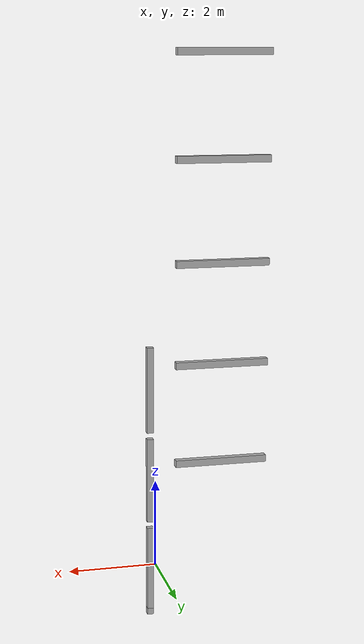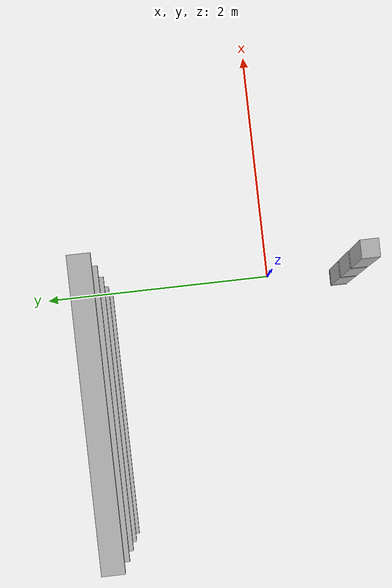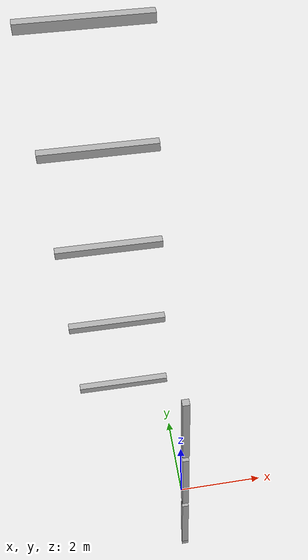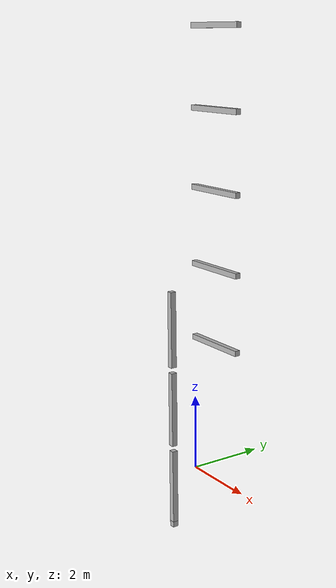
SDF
<sdf version="1.7">
 <world name="default">
  <model name="orthogonal_747_2.000.15_TS">
   <static>1</static>
   <link name="u_link_0_2_3">
    <inertial>
     <mass>1</mass>
     <inertia>
      <ixx>0.166667</ixx>
      <ixy>0</ixy>
      <ixz>0</ixz>
      <iyy>0.166667</iyy>
      <iyz>0</iyz>
      <izz>0.166667</izz>
     </inertia>
    </inertial>
    <pose>6.45 4.3 1.075 0 -0 0</pose>
    <visual name="visual_0">
     <laser_retro>400</laser_retro>
     <geometry><box><size>0.15 1e-06 0.15</size></box></geometry>
     <material>
      <script><name>Gazebo/Grey</name><uri>file://media/materials/scripts/gazebo.material</uri></script>
      <shader type="pixel"><normal_map>__default__</normal_map></shader>
      <ambient>0.678 0.498 0.659 1</ambient>
      <diffuse>0.7 0.7 0.7 1</diffuse>
      <specular>0.01 0.01 0.01 1</specular>
      <emissive>0 0 0 1</emissive>
     </material>
     <pose>0 -0.075 0 0 -0 0</pose>
     <transparency>1</transparency>
    </visual>
    <visual name="visual_1">
     <laser_retro>401</laser_retro>
     <geometry><box><size>0.15 1e-06 0.15</size></box></geometry>
     <material>
      <script><name>Gazebo/Grey</name><uri>file://media/materials/scripts/gazebo.material</uri></script>
      <shader type="pixel"><normal_map>__default__</normal_map></shader>
      <ambient>0.447 0.624 0.812 1</ambient>
      <diffuse>0.7 0.7 0.7 1</diffuse>
      <specular>0.01 0.01 0.01 1</specular>
      <emissive>0 0 0 1</emissive>
     </material>
     <pose>0 0.075 0 0 -0 0</pose>
     <transparency>1</transparency>
    </visual>
    <visual name="visual_2">
     <laser_retro>402</laser_retro>
     <geometry><box><size>0.15 0.15 1e-06</size></box></geometry>
     <material>
      <script><name>Gazebo/Grey</name><uri>file://media/materials/scripts/gazebo.material</uri></script>
      <shader type="pixel"><normal_map>__default__</normal_map></shader>
      <ambient>0.988 0.686 0.243 1</ambient>
      <diffuse>0.7 0.7 0.7 1</diffuse>
      <specular>0.01 0.01 0.01 1</specular>
      <emissive>0 0 0 1</emissive>
     </material>
     <pose>0 0 -0.075 0 -0 0</pose>
     <transparency>1</transparency>
    </visual>
    <visual name="visual_3">
     <laser_retro>403</laser_retro>
     <geometry><box><size>1e-06 0.15 0.15</size></box></geometry>
     <material>
      <script><name>Gazebo/Grey</name><uri>file://media/materials/scripts/gazebo.material</uri></script>
      <shader type="pixel"><normal_map>__default__</normal_map></shader>
      <ambient>0.988 0.914 0.31 1</ambient>
      <diffuse>0.7 0.7 0.7 1</diffuse>
      <specular>0.01 0.01 0.01 1</specular>
      <emissive>0 0 0 1</emissive>
     </material>
     <pose>0.075 0 0 0 -0 0</pose>
     <transparency>1</transparency>
    </visual>
    <visual name="visual_4">
     <laser_retro>404</laser_retro>
     <geometry><box><size>0.15 0.15 1e-06</size></box></geometry>
     <material>
      <script><name>Gazebo/Grey</name><uri>file://media/materials/scripts/gazebo.material</uri></script>
      <shader type="pixel"><normal_map>__default__</normal_map></shader>
      <ambient>0.937 0.161 0.161 1</ambient>
      <diffuse>0.7 0.7 0.7 1</diffuse>
      <specular>0.01 0.01 0.01 1</specular>
      <emissive>0 0 0 1</emissive>
     </material>
     <pose>0 0 0.075 0 -0 0</pose>
     <transparency>1</transparency>
    </visual>
    <visual name="visual_5">
     <laser_retro>405</laser_retro>
     <geometry><box><size>1e-06 0.15 0.15</size></box></geometry>
     <material>
      <script><name>Gazebo/Grey</name><uri>file://media/materials/scripts/gazebo.material</uri></script>
      <shader type="pixel"><normal_map>__default__</normal_map></shader>
      <ambient>0.541 0.886 0.204 1</ambient>
      <diffuse>0.7 0.7 0.7 1</diffuse>
      <specular>0.01 0.01 0.01 1</specular>
      <emissive>0 0 0 1</emissive>
     </material>
     <pose>-0.075 0 0 0 -0 0</pose>
     <transparency>1</transparency>
    </visual>
    <visual name="visual_texture">
     <geometry><box><size>0.149985 0.149985 0.149985</size></box></geometry>
     <material>
      <script>
       <uri>model://BASE_MODELS/simple_block_v2_textured/materials/scripts</uri>
       <uri>model://BASE_MODELS/simple_block_v2_textured/materials/textures</uri>
       <name>metal</name>
      </script>
     </material>
     <laser_retro>406</laser_retro>
    </visual>
    <collision name="collision">
     <geometry><box><size>0.15 0.15 0.15</size></box></geometry>
     <surface>
      <friction>
       <ode><mu>1</mu><mu2>1</mu2><fdir1>0 0 0</fdir1><slip1>0</slip1><slip2>0</slip2></ode>
       <torsional>
        <coefficient>1</coefficient>
        <patch_radius>0</patch_radius>
        <surface_radius>0</surface_radius>
        <use_patch_radius>1</use_patch_radius>
        <ode><slip>0</slip></ode>
       </torsional>
      </friction>
      <bounce><restitution_coefficient>0</restitution_coefficient><threshold>1e+06</threshold></bounce>
      <contact>
       <collide_without_contact>0</collide_without_contact>
       <collide_without_contact_bitmask>1</collide_without_contact_bitmask>
       <collide_bitmask>1</collide_bitmask>
       <ode>
        <soft_cfm>0</soft_cfm>
        <soft_erp>0.2</soft_erp>
        <kp>1e+13</kp>
        <kd>1</kd>
        <max_vel>0.01</max_vel>
        <min_depth>0</min_depth>
       </ode>
       <bullet>
        <split_impulse>1</split_impulse>
        <split_impulse_penetration_threshold>-0.01</split_impulse_penetration_threshold>
        <soft_cfm>0</soft_cfm>
        <soft_erp>0.2</soft_erp>
        <kp>1e+13</kp>
        <kd>1</kd>
       </bullet>
      </contact>
     </surface>
    </collision>
   </link>
   <link name="z_link_1_2_3">
    <inertial>
     <mass>1</mass>
     <inertia>
      <ixx>0.166667</ixx>
      <ixy>0</ixy>
      <ixz>0</ixz>
      <iyy>0.166667</iyy>
      <iyz>0</iyz>
      <izz>0.166667</izz>
     </inertia>
    </inertial>
    <pose>6.45 4.3 2.15 0 -0 0</pose>
    <visual name="visual_0">
     <laser_retro>1226</laser_retro>
     <geometry><box><size>0.15 1e-06 2</size></box></geometry>
     <material>
      <script><name>Gazebo/Grey</name><uri>file://media/materials/scripts/gazebo.material</uri></script>
      <shader type="pixel"><normal_map>__default__</normal_map></shader>
      <ambient>0.678 0.498 0.659 1</ambient>
      <diffuse>0.7 0.7 0.7 1</diffuse>
      <specular>0.01 0.01 0.01 1</specular>
      <emissive>0 0 0 1</emissive>
     </material>
     <pose>0 -0.075 0 0 -0 0</pose>
     <transparency>1</transparency>
    </visual>
    <visual name="visual_1">
     <laser_retro>1227</laser_retro>
     <geometry><box><size>0.15 1e-06 2</size></box></geometry>
     <material>
      <script><name>Gazebo/Grey</name><uri>file://media/materials/scripts/gazebo.material</uri></script>
      <shader type="pixel"><normal_map>__default__</normal_map></shader>
      <ambient>0.447 0.624 0.812 1</ambient>
      <diffuse>0.7 0.7 0.7 1</diffuse>
      <specular>0.01 0.01 0.01 1</specular>
      <emissive>0 0 0 1</emissive>
     </material>
     <pose>0 0.075 0 0 -0 0</pose>
     <transparency>1</transparency>
    </visual>
    <visual name="visual_2">
     <laser_retro>1228</laser_retro>
     <geometry><box><size>0.15 0.15 1e-06</size></box></geometry>
     <material>
      <script><name>Gazebo/Grey</name><uri>file://media/materials/scripts/gazebo.material</uri></script>
      <shader type="pixel"><normal_map>__default__</normal_map></shader>
      <ambient>0.988 0.686 0.243 1</ambient>
      <diffuse>0.7 0.7 0.7 1</diffuse>
      <specular>0.01 0.01 0.01 1</specular>
      <emissive>0 0 0 1</emissive>
     </material>
     <pose>0 0 -1 0 -0 0</pose>
     <transparency>1</transparency>
    </visual>
    <visual name="visual_3">
     <laser_retro>1229</laser_retro>
     <geometry><box><size>1e-06 0.15 2</size></box></geometry>
     <material>
      <script><name>Gazebo/Grey</name><uri>file://media/materials/scripts/gazebo.material</uri></script>
      <shader type="pixel"><normal_map>__default__</normal_map></shader>
      <ambient>0.988 0.914 0.31 1</ambient>
      <diffuse>0.7 0.7 0.7 1</diffuse>
      <specular>0.01 0.01 0.01 1</specular>
      <emissive>0 0 0 1</emissive>
     </material>
     <pose>0.075 0 0 0 -0 0</pose>
     <transparency>1</transparency>
    </visual>
    <visual name="visual_4">
     <laser_retro>1230</laser_retro>
     <geometry><box><size>0.15 0.15 1e-06</size></box></geometry>
     <material>
      <script><name>Gazebo/Grey</name><uri>file://media/materials/scripts/gazebo.material</uri></script>
      <shader type="pixel"><normal_map>__default__</normal_map></shader>
      <ambient>0.937 0.161 0.161 1</ambient>
      <diffuse>0.7 0.7 0.7 1</diffuse>
      <specular>0.01 0.01 0.01 1</specular>
      <emissive>0 0 0 1</emissive>
     </material>
     <pose>0 0 1 0 -0 0</pose>
     <transparency>1</transparency>
    </visual>
    <visual name="visual_5">
     <laser_retro>1231</laser_retro>
     <geometry><box><size>1e-06 0.15 2</size></box></geometry>
     <material>
      <script><name>Gazebo/Grey</name><uri>file://media/materials/scripts/gazebo.material</uri></script>
      <shader type="pixel"><normal_map>__default__</normal_map></shader>
      <ambient>0.541 0.886 0.204 1</ambient>
      <diffuse>0.7 0.7 0.7 1</diffuse>
      <specular>0.01 0.01 0.01 1</specular>
      <emissive>0 0 0 1</emissive>
     </material>
     <pose>-0.075 0 0 0 -0 0</pose>
     <transparency>1</transparency>
    </visual>
    <visual name="visual_texture">
     <geometry><box><size>0.149985 0.149985 1.9998</size></box></geometry>
     <material>
      <script>
       <uri>model://BASE_MODELS/simple_block_v2_textured/materials/scripts</uri>
       <uri>model://BASE_MODELS/simple_block_v2_textured/materials/textures</uri>
       <name>metal</name>
      </script>
     </material>
     <laser_retro>1232</laser_retro>
    </visual>
    <collision name="collision">
     <geometry><box><size>0.15 0.15 2</size></box></geometry>
     <surface>
      <friction>
       <ode><mu>1</mu><mu2>1</mu2><fdir1>0 0 0</fdir1><slip1>0</slip1><slip2>0</slip2></ode>
       <torsional>
        <coefficient>1</coefficient>
        <patch_radius>0</patch_radius>
        <surface_radius>0</surface_radius>
        <use_patch_radius>1</use_patch_radius>
        <ode><slip>0</slip></ode>
       </torsional>
      </friction>
      <bounce><restitution_coefficient>0</restitution_coefficient><threshold>1e+06</threshold></bounce>
      <contact>
       <collide_without_contact>0</collide_without_contact>
       <collide_without_contact_bitmask>1</collide_without_contact_bitmask>
       <collide_bitmask>1</collide_bitmask>
       <ode>
        <soft_cfm>0</soft_cfm>
        <soft_erp>0.2</soft_erp>
        <kp>1e+13</kp>
        <kd>1</kd>
        <max_vel>0.01</max_vel>
        <min_depth>0</min_depth>
       </ode>
       <bullet>
        <split_impulse>1</split_impulse>
        <split_impulse_penetration_threshold>-0.01</split_impulse_penetration_threshold>
        <soft_cfm>0</soft_cfm>
        <soft_erp>0.2</soft_erp>
        <kp>1e+13</kp>
        <kd>1</kd>
       </bullet>
      </contact>
     </surface>
    </collision>
   </link>
   <link name="z_link_2_2_3">
    <inertial>
     <mass>1</mass>
     <inertia>
      <ixx>0.166667</ixx>
      <ixy>0</ixy>
      <ixz>0</ixz>
      <iyy>0.166667</iyy>
      <iyz>0</iyz>
      <izz>0.166667</izz>
     </inertia>
    </inertial>
    <pose>6.45 4.3 4.3 0 -0 0</pose>
    <visual name="visual_0">
     <laser_retro>2129</laser_retro>
     <geometry><box><size>0.15 1e-06 2</size></box></geometry>
     <material>
      <script><name>Gazebo/Grey</name><uri>file://media/materials/scripts/gazebo.material</uri></script>
      <shader type="pixel"><normal_map>__default__</normal_map></shader>
      <ambient>0.678 0.498 0.659 1</ambient>
      <diffuse>0.7 0.7 0.7 1</diffuse>
      <specular>0.01 0.01 0.01 1</specular>
      <emissive>0 0 0 1</emissive>
     </material>
     <pose>0 -0.075 0 0 -0 0</pose>
     <transparency>1</transparency>
    </visual>
    <visual name="visual_1">
     <laser_retro>2130</laser_retro>
     <geometry><box><size>0.15 1e-06 2</size></box></geometry>
     <material>
      <script><name>Gazebo/Grey</name><uri>file://media/materials/scripts/gazebo.material</uri></script>
      <shader type="pixel"><normal_map>__default__</normal_map></shader>
      <ambient>0.447 0.624 0.812 1</ambient>
      <diffuse>0.7 0.7 0.7 1</diffuse>
      <specular>0.01 0.01 0.01 1</specular>
      <emissive>0 0 0 1</emissive>
     </material>
     <pose>0 0.075 0 0 -0 0</pose>
     <transparency>1</transparency>
    </visual>
    <visual name="visual_2">
     <laser_retro>2131</laser_retro>
     <geometry><box><size>0.15 0.15 1e-06</size></box></geometry>
     <material>
      <script><name>Gazebo/Grey</name><uri>file://media/materials/scripts/gazebo.material</uri></script>
      <shader type="pixel"><normal_map>__default__</normal_map></shader>
      <ambient>0.988 0.686 0.243 1</ambient>
      <diffuse>0.7 0.7 0.7 1</diffuse>
      <specular>0.01 0.01 0.01 1</specular>
      <emissive>0 0 0 1</emissive>
     </material>
     <pose>0 0 -1 0 -0 0</pose>
     <transparency>1</transparency>
    </visual>
    <visual name="visual_3">
     <laser_retro>2132</laser_retro>
     <geometry><box><size>1e-06 0.15 2</size></box></geometry>
     <material>
      <script><name>Gazebo/Grey</name><uri>file://media/materials/scripts/gazebo.material</uri></script>
      <shader type="pixel"><normal_map>__default__</normal_map></shader>
      <ambient>0.988 0.914 0.31 1</ambient>
      <diffuse>0.7 0.7 0.7 1</diffuse>
      <specular>0.01 0.01 0.01 1</specular>
      <emissive>0 0 0 1</emissive>
     </material>
     <pose>0.075 0 0 0 -0 0</pose>
     <transparency>1</transparency>
    </visual>
    <visual name="visual_4">
     <laser_retro>2133</laser_retro>
     <geometry><box><size>0.15 0.15 1e-06</size></box></geometry>
     <material>
      <script><name>Gazebo/Grey</name><uri>file://media/materials/scripts/gazebo.material</uri></script>
      <shader type="pixel"><normal_map>__default__</normal_map></shader>
      <ambient>0.937 0.161 0.161 1</ambient>
      <diffuse>0.7 0.7 0.7 1</diffuse>
      <specular>0.01 0.01 0.01 1</specular>
      <emissive>0 0 0 1</emissive>
     </material>
     <pose>0 0 1 0 -0 0</pose>
     <transparency>1</transparency>
    </visual>
    <visual name="visual_5">
     <laser_retro>2134</laser_retro>
     <geometry><box><size>1e-06 0.15 2</size></box></geometry>
     <material>
      <script><name>Gazebo/Grey</name><uri>file://media/materials/scripts/gazebo.material</uri></script>
      <shader type="pixel"><normal_map>__default__</normal_map></shader>
      <ambient>0.541 0.886 0.204 1</ambient>
      <diffuse>0.7 0.7 0.7 1</diffuse>
      <specular>0.01 0.01 0.01 1</specular>
      <emissive>0 0 0 1</emissive>
     </material>
     <pose>-0.075 0 0 0 -0 0</pose>
     <transparency>1</transparency>
    </visual>
    <visual name="visual_texture">
     <geometry><box><size>0.149985 0.149985 1.9998</size></box></geometry>
     <material>
      <script>
       <uri>model://BASE_MODELS/simple_block_v2_textured/materials/scripts</uri>
       <uri>model://BASE_MODELS/simple_block_v2_textured/materials/textures</uri>
       <name>metal</name>
      </script>
     </material>
     <laser_retro>2135</laser_retro>
    </visual>
    <collision name="collision">
     <geometry><box><size>0.15 0.15 2</size></box></geometry>
     <surface>
      <friction>
       <ode><mu>1</mu><mu2>1</mu2><fdir1>0 0 0</fdir1><slip1>0</slip1><slip2>0</slip2></ode>
       <torsional>
        <coefficient>1</coefficient>
        <patch_radius>0</patch_radius>
        <surface_radius>0</surface_radius>
        <use_patch_radius>1</use_patch_radius>
        <ode><slip>0</slip></ode>
       </torsional>
      </friction>
      <bounce><restitution_coefficient>0</restitution_coefficient><threshold>1e+06</threshold></bounce>
      <contact>
       <collide_without_contact>0</collide_without_contact>
       <collide_without_contact_bitmask>1</collide_without_contact_bitmask>
       <collide_bitmask>1</collide_bitmask>
       <ode>
        <soft_cfm>0</soft_cfm>
        <soft_erp>0.2</soft_erp>
        <kp>1e+13</kp>
        <kd>1</kd>
        <max_vel>0.01</max_vel>
        <min_depth>0</min_depth>
       </ode>
       <bullet>
        <split_impulse>1</split_impulse>
        <split_impulse_penetration_threshold>-0.01</split_impulse_penetration_threshold>
        <soft_cfm>0</soft_cfm>
        <soft_erp>0.2</soft_erp>
        <kp>1e+13</kp>
        <kd>1</kd>
       </bullet>
      </contact>
     </surface>
    </collision>
   </link>
   <link name="x_link_2_3_2">
    <inertial>
     <mass>1</mass>
     <inertia>
      <ixx>0.166667</ixx>
      <ixy>0</ixy>
      <ixz>0</ixz>
      <iyy>0.166667</iyy>
      <iyz>0</iyz>
      <izz>0.166667</izz>
     </inertia>
    </inertial>
    <pose>5.375 6.45 5.375 0 -0 0</pose>
    <visual name="visual_0">
     <laser_retro>2269</laser_retro>
     <geometry><box><size>2 1e-06 0.15</size></box></geometry>
     <material>
      <script><name>Gazebo/Grey</name><uri>file://media/materials/scripts/gazebo.material</uri></script>
      <shader type="pixel"><normal_map>__default__</normal_map></shader>
      <ambient>0.678 0.498 0.659 1</ambient>
      <diffuse>0.7 0.7 0.7 1</diffuse>
      <specular>0.01 0.01 0.01 1</specular>
      <emissive>0 0 0 1</emissive>
     </material>
     <pose>0 -0.075 0 0 -0 0</pose>
     <transparency>1</transparency>
    </visual>
    <visual name="visual_1">
     <laser_retro>2270</laser_retro>
     <geometry><box><size>2 1e-06 0.15</size></box></geometry>
     <material>
      <script><name>Gazebo/Grey</name><uri>file://media/materials/scripts/gazebo.material</uri></script>
      <shader type="pixel"><normal_map>__default__</normal_map></shader>
      <ambient>0.447 0.624 0.812 1</ambient>
      <diffuse>0.7 0.7 0.7 1</diffuse>
      <specular>0.01 0.01 0.01 1</specular>
      <emissive>0 0 0 1</emissive>
     </material>
     <pose>0 0.075 0 0 -0 0</pose>
     <transparency>1</transparency>
    </visual>
    <visual name="visual_2">
     <laser_retro>2271</laser_retro>
     <geometry><box><size>2 0.15 1e-06</size></box></geometry>
     <material>
      <script><name>Gazebo/Grey</name><uri>file://media/materials/scripts/gazebo.material</uri></script>
      <shader type="pixel"><normal_map>__default__</normal_map></shader>
      <ambient>0.988 0.686 0.243 1</ambient>
      <diffuse>0.7 0.7 0.7 1</diffuse>
      <specular>0.01 0.01 0.01 1</specular>
      <emissive>0 0 0 1</emissive>
     </material>
     <pose>0 0 -0.075 0 -0 0</pose>
     <transparency>1</transparency>
    </visual>
    <visual name="visual_3">
     <laser_retro>2272</laser_retro>
     <geometry><box><size>1e-06 0.15 0.15</size></box></geometry>
     <material>
      <script><name>Gazebo/Grey</name><uri>file://media/materials/scripts/gazebo.material</uri></script>
      <shader type="pixel"><normal_map>__default__</normal_map></shader>
      <ambient>0.988 0.914 0.31 1</ambient>
      <diffuse>0.7 0.7 0.7 1</diffuse>
      <specular>0.01 0.01 0.01 1</specular>
      <emissive>0 0 0 1</emissive>
     </material>
     <pose>1 0 0 0 -0 0</pose>
     <transparency>1</transparency>
    </visual>
    <visual name="visual_4">
     <laser_retro>2273</laser_retro>
     <geometry><box><size>2 0.15 1e-06</size></box></geometry>
     <material>
      <script><name>Gazebo/Grey</name><uri>file://media/materials/scripts/gazebo.material</uri></script>
      <shader type="pixel"><normal_map>__default__</normal_map></shader>
      <ambient>0.937 0.161 0.161 1</ambient>
      <diffuse>0.7 0.7 0.7 1</diffuse>
      <specular>0.01 0.01 0.01 1</specular>
      <emissive>0 0 0 1</emissive>
     </material>
     <pose>0 0 0.075 0 -0 0</pose>
     <transparency>1</transparency>
    </visual>
    <visual name="visual_5">
     <laser_retro>2274</laser_retro>
     <geometry><box><size>1e-06 0.15 0.15</size></box></geometry>
     <material>
      <script><name>Gazebo/Grey</name><uri>file://media/materials/scripts/gazebo.material</uri></script>
      <shader type="pixel"><normal_map>__default__</normal_map></shader>
      <ambient>0.541 0.886 0.204 1</ambient>
      <diffuse>0.7 0.7 0.7 1</diffuse>
      <specular>0.01 0.01 0.01 1</specular>
      <emissive>0 0 0 1</emissive>
     </material>
     <pose>-1 0 0 0 -0 0</pose>
     <transparency>1</transparency>
    </visual>
    <visual name="visual_texture">
     <geometry><box><size>1.9998 0.149985 0.149985</size></box></geometry>
     <material>
      <script>
       <uri>model://BASE_MODELS/simple_block_v2_textured/materials/scripts</uri>
       <uri>model://BASE_MODELS/simple_block_v2_textured/materials/textures</uri>
       <name>metal</name>
      </script>
     </material>
     <laser_retro>2275</laser_retro>
    </visual>
    <collision name="collision">
     <geometry><box><size>2 0.15 0.15</size></box></geometry>
     <surface>
      <friction>
       <ode><mu>1</mu><mu2>1</mu2><fdir1>0 0 0</fdir1><slip1>0</slip1><slip2>0</slip2></ode>
       <torsional>
        <coefficient>1</coefficient>
        <patch_radius>0</patch_radius>
        <surface_radius>0</surface_radius>
        <use_patch_radius>1</use_patch_radius>
        <ode><slip>0</slip></ode>
       </torsional>
      </friction>
      <bounce><restitution_coefficient>0</restitution_coefficient><threshold>1e+06</threshold></bounce>
      <contact>
       <collide_without_contact>0</collide_without_contact>
       <collide_without_contact_bitmask>1</collide_without_contact_bitmask>
       <collide_bitmask>1</collide_bitmask>
       <ode>
        <soft_cfm>0</soft_cfm>
        <soft_erp>0.2</soft_erp>
        <kp>1e+13</kp>
        <kd>1</kd>
        <max_vel>0.01</max_vel>
        <min_depth>0</min_depth>
       </ode>
       <bullet>
        <split_impulse>1</split_impulse>
        <split_impulse_penetration_threshold>-0.01</split_impulse_penetration_threshold>
        <soft_cfm>0</soft_cfm>
        <soft_erp>0.2</soft_erp>
        <kp>1e+13</kp>
        <kd>1</kd>
       </bullet>
      </contact>
     </surface>
    </collision>
   </link>
   <link name="z_link_3_2_3">
    <inertial>
     <mass>1</mass>
     <inertia>
      <ixx>0.166667</ixx>
      <ixy>0</ixy>
      <ixz>0</ixz>
      <iyy>0.166667</iyy>
      <iyz>0</iyz>
      <izz>0.166667</izz>
     </inertia>
    </inertial>
    <pose>6.45 4.3 6.45 0 -0 0</pose>
    <visual name="visual_0">
     <laser_retro>3032</laser_retro>
     <geometry><box><size>0.15 1e-06 2</size></box></geometry>
     <material>
      <script><name>Gazebo/Grey</name><uri>file://media/materials/scripts/gazebo.material</uri></script>
      <shader type="pixel"><normal_map>__default__</normal_map></shader>
      <ambient>0.678 0.498 0.659 1</ambient>
      <diffuse>0.7 0.7 0.7 1</diffuse>
      <specular>0.01 0.01 0.01 1</specular>
      <emissive>0 0 0 1</emissive>
     </material>
     <pose>0 -0.075 0 0 -0 0</pose>
     <transparency>1</transparency>
    </visual>
    <visual name="visual_1">
     <laser_retro>3033</laser_retro>
     <geometry><box><size>0.15 1e-06 2</size></box></geometry>
     <material>
      <script><name>Gazebo/Grey</name><uri>file://media/materials/scripts/gazebo.material</uri></script>
      <shader type="pixel"><normal_map>__default__</normal_map></shader>
      <ambient>0.447 0.624 0.812 1</ambient>
      <diffuse>0.7 0.7 0.7 1</diffuse>
      <specular>0.01 0.01 0.01 1</specular>
      <emissive>0 0 0 1</emissive>
     </material>
     <pose>0 0.075 0 0 -0 0</pose>
     <transparency>1</transparency>
    </visual>
    <visual name="visual_2">
     <laser_retro>3034</laser_retro>
     <geometry><box><size>0.15 0.15 1e-06</size></box></geometry>
     <material>
      <script><name>Gazebo/Grey</name><uri>file://media/materials/scripts/gazebo.material</uri></script>
      <shader type="pixel"><normal_map>__default__</normal_map></shader>
      <ambient>0.988 0.686 0.243 1</ambient>
      <diffuse>0.7 0.7 0.7 1</diffuse>
      <specular>0.01 0.01 0.01 1</specular>
      <emissive>0 0 0 1</emissive>
     </material>
     <pose>0 0 -1 0 -0 0</pose>
     <transparency>1</transparency>
    </visual>
    <visual name="visual_3">
     <laser_retro>3035</laser_retro>
     <geometry><box><size>1e-06 0.15 2</size></box></geometry>
     <material>
      <script><name>Gazebo/Grey</name><uri>file://media/materials/scripts/gazebo.material</uri></script>
      <shader type="pixel"><normal_map>__default__</normal_map></shader>
      <ambient>0.988 0.914 0.31 1</ambient>
      <diffuse>0.7 0.7 0.7 1</diffuse>
      <specular>0.01 0.01 0.01 1</specular>
      <emissive>0 0 0 1</emissive>
     </material>
     <pose>0.075 0 0 0 -0 0</pose>
     <transparency>1</transparency>
    </visual>
    <visual name="visual_4">
     <laser_retro>3036</laser_retro>
     <geometry><box><size>0.15 0.15 1e-06</size></box></geometry>
     <material>
      <script><name>Gazebo/Grey</name><uri>file://media/materials/scripts/gazebo.material</uri></script>
      <shader type="pixel"><normal_map>__default__</normal_map></shader>
      <ambient>0.937 0.161 0.161 1</ambient>
      <diffuse>0.7 0.7 0.7 1</diffuse>
      <specular>0.01 0.01 0.01 1</specular>
      <emissive>0 0 0 1</emissive>
     </material>
     <pose>0 0 1 0 -0 0</pose>
     <transparency>1</transparency>
    </visual>
    <visual name="visual_5">
     <laser_retro>3037</laser_retro>
     <geometry><box><size>1e-06 0.15 2</size></box></geometry>
     <material>
      <script><name>Gazebo/Grey</name><uri>file://media/materials/scripts/gazebo.material</uri></script>
      <shader type="pixel"><normal_map>__default__</normal_map></shader>
      <ambient>0.541 0.886 0.204 1</ambient>
      <diffuse>0.7 0.7 0.7 1</diffuse>
      <specular>0.01 0.01 0.01 1</specular>
      <emissive>0 0 0 1</emissive>
     </material>
     <pose>-0.075 0 0 0 -0 0</pose>
     <transparency>1</transparency>
    </visual>
    <visual name="visual_texture">
     <geometry><box><size>0.149985 0.149985 1.9998</size></box></geometry>
     <material>
      <script>
       <uri>model://BASE_MODELS/simple_block_v2_textured/materials/scripts</uri>
       <uri>model://BASE_MODELS/simple_block_v2_textured/materials/textures</uri>
       <name>metal</name>
      </script>
     </material>
     <laser_retro>3038</laser_retro>
    </visual>
    <collision name="collision">
     <geometry><box><size>0.15 0.15 2</size></box></geometry>
     <surface>
      <friction>
       <ode><mu>1</mu><mu2>1</mu2><fdir1>0 0 0</fdir1><slip1>0</slip1><slip2>0</slip2></ode>
       <torsional>
        <coefficient>1</coefficient>
        <patch_radius>0</patch_radius>
        <surface_radius>0</surface_radius>
        <use_patch_radius>1</use_patch_radius>
        <ode><slip>0</slip></ode>
       </torsional>
      </friction>
      <bounce><restitution_coefficient>0</restitution_coefficient><threshold>1e+06</threshold></bounce>
      <contact>
       <collide_without_contact>0</collide_without_contact>
       <collide_without_contact_bitmask>1</collide_without_contact_bitmask>
       <collide_bitmask>1</collide_bitmask>
       <ode>
        <soft_cfm>0</soft_cfm>
        <soft_erp>0.2</soft_erp>
        <kp>1e+13</kp>
        <kd>1</kd>
        <max_vel>0.01</max_vel>
        <min_depth>0</min_depth>
       </ode>
       <bullet>
        <split_impulse>1</split_impulse>
        <split_impulse_penetration_threshold>-0.01</split_impulse_penetration_threshold>
        <soft_cfm>0</soft_cfm>
        <soft_erp>0.2</soft_erp>
        <kp>1e+13</kp>
        <kd>1</kd>
       </bullet>
      </contact>
     </surface>
    </collision>
   </link>
   <link name="x_link_3_3_2">
    <inertial>
     <mass>1</mass>
     <inertia>
      <ixx>0.166667</ixx>
      <ixy>0</ixy>
      <ixz>0</ixz>
      <iyy>0.166667</iyy>
      <iyz>0</iyz>
      <izz>0.166667</izz>
     </inertia>
    </inertial>
    <pose>5.375 6.45 7.525 0 -0 0</pose>
    <visual name="visual_0">
     <laser_retro>3172</laser_retro>
     <geometry><box><size>2 1e-06 0.15</size></box></geometry>
     <material>
      <script><name>Gazebo/Grey</name><uri>file://media/materials/scripts/gazebo.material</uri></script>
      <shader type="pixel"><normal_map>__default__</normal_map></shader>
      <ambient>0.678 0.498 0.659 1</ambient>
      <diffuse>0.7 0.7 0.7 1</diffuse>
      <specular>0.01 0.01 0.01 1</specular>
      <emissive>0 0 0 1</emissive>
     </material>
     <pose>0 -0.075 0 0 -0 0</pose>
     <transparency>1</transparency>
    </visual>
    <visual name="visual_1">
     <laser_retro>3173</laser_retro>
     <geometry><box><size>2 1e-06 0.15</size></box></geometry>
     <material>
      <script><name>Gazebo/Grey</name><uri>file://media/materials/scripts/gazebo.material</uri></script>
      <shader type="pixel"><normal_map>__default__</normal_map></shader>
      <ambient>0.447 0.624 0.812 1</ambient>
      <diffuse>0.7 0.7 0.7 1</diffuse>
      <specular>0.01 0.01 0.01 1</specular>
      <emissive>0 0 0 1</emissive>
     </material>
     <pose>0 0.075 0 0 -0 0</pose>
     <transparency>1</transparency>
    </visual>
    <visual name="visual_2">
     <laser_retro>3174</laser_retro>
     <geometry><box><size>2 0.15 1e-06</size></box></geometry>
     <material>
      <script><name>Gazebo/Grey</name><uri>file://media/materials/scripts/gazebo.material</uri></script>
      <shader type="pixel"><normal_map>__default__</normal_map></shader>
      <ambient>0.988 0.686 0.243 1</ambient>
      <diffuse>0.7 0.7 0.7 1</diffuse>
      <specular>0.01 0.01 0.01 1</specular>
      <emissive>0 0 0 1</emissive>
     </material>
     <pose>0 0 -0.075 0 -0 0</pose>
     <transparency>1</transparency>
    </visual>
    <visual name="visual_3">
     <laser_retro>3175</laser_retro>
     <geometry><box><size>1e-06 0.15 0.15</size></box></geometry>
     <material>
      <script><name>Gazebo/Grey</name><uri>file://media/materials/scripts/gazebo.material</uri></script>
      <shader type="pixel"><normal_map>__default__</normal_map></shader>
      <ambient>0.988 0.914 0.31 1</ambient>
      <diffuse>0.7 0.7 0.7 1</diffuse>
      <specular>0.01 0.01 0.01 1</specular>
      <emissive>0 0 0 1</emissive>
     </material>
     <pose>1 0 0 0 -0 0</pose>
     <transparency>1</transparency>
    </visual>
    <visual name="visual_4">
     <laser_retro>3176</laser_retro>
     <geometry><box><size>2 0.15 1e-06</size></box></geometry>
     <material>
      <script><name>Gazebo/Grey</name><uri>file://media/materials/scripts/gazebo.material</uri></script>
      <shader type="pixel"><normal_map>__default__</normal_map></shader>
      <ambient>0.937 0.161 0.161 1</ambient>
      <diffuse>0.7 0.7 0.7 1</diffuse>
      <specular>0.01 0.01 0.01 1</specular>
      <emissive>0 0 0 1</emissive>
     </material>
     <pose>0 0 0.075 0 -0 0</pose>
     <transparency>1</transparency>
    </visual>
    <visual name="visual_5">
     <laser_retro>3177</laser_retro>
     <geometry><box><size>1e-06 0.15 0.15</size></box></geometry>
     <material>
      <script><name>Gazebo/Grey</name><uri>file://media/materials/scripts/gazebo.material</uri></script>
      <shader type="pixel"><normal_map>__default__</normal_map></shader>
      <ambient>0.541 0.886 0.204 1</ambient>
      <diffuse>0.7 0.7 0.7 1</diffuse>
      <specular>0.01 0.01 0.01 1</specular>
      <emissive>0 0 0 1</emissive>
     </material>
     <pose>-1 0 0 0 -0 0</pose>
     <transparency>1</transparency>
    </visual>
    <visual name="visual_texture">
     <geometry><box><size>1.9998 0.149985 0.149985</size></box></geometry>
     <material>
      <script>
       <uri>model://BASE_MODELS/simple_block_v2_textured/materials/scripts</uri>
       <uri>model://BASE_MODELS/simple_block_v2_textured/materials/textures</uri>
       <name>metal</name>
      </script>
     </material>
     <laser_retro>3178</laser_retro>
    </visual>
    <collision name="collision">
     <geometry><box><size>2 0.15 0.15</size></box></geometry>
     <surface>
      <friction>
       <ode><mu>1</mu><mu2>1</mu2><fdir1>0 0 0</fdir1><slip1>0</slip1><slip2>0</slip2></ode>
       <torsional>
        <coefficient>1</coefficient>
        <patch_radius>0</patch_radius>
        <surface_radius>0</surface_radius>
        <use_patch_radius>1</use_patch_radius>
        <ode><slip>0</slip></ode>
       </torsional>
      </friction>
      <bounce><restitution_coefficient>0</restitution_coefficient><threshold>1e+06</threshold></bounce>
      <contact>
       <collide_without_contact>0</collide_without_contact>
       <collide_without_contact_bitmask>1</collide_without_contact_bitmask>
       <collide_bitmask>1</collide_bitmask>
       <ode>
        <soft_cfm>0</soft_cfm>
        <soft_erp>0.2</soft_erp>
        <kp>1e+13</kp>
        <kd>1</kd>
        <max_vel>0.01</max_vel>
        <min_depth>0</min_depth>
       </ode>
       <bullet>
        <split_impulse>1</split_impulse>
        <split_impulse_penetration_threshold>-0.01</split_impulse_penetration_threshold>
        <soft_cfm>0</soft_cfm>
        <soft_erp>0.2</soft_erp>
        <kp>1e+13</kp>
        <kd>1</kd>
       </bullet>
      </contact>
     </surface>
    </collision>
   </link>
   <link name="x_link_4_3_2">
    <inertial>
     <mass>1</mass>
     <inertia>
      <ixx>0.166667</ixx>
      <ixy>0</ixy>
      <ixz>0</ixz>
      <iyy>0.166667</iyy>
      <iyz>0</iyz>
      <izz>0.166667</izz>
     </inertia>
    </inertial>
    <pose>5.375 6.45 9.675 0 -0 0</pose>
    <visual name="visual_0">
     <laser_retro>4075</laser_retro>
     <geometry><box><size>2 1e-06 0.15</size></box></geometry>
     <material>
      <script><name>Gazebo/Grey</name><uri>file://media/materials/scripts/gazebo.material</uri></script>
      <shader type="pixel"><normal_map>__default__</normal_map></shader>
      <ambient>0.678 0.498 0.659 1</ambient>
      <diffuse>0.7 0.7 0.7 1</diffuse>
      <specular>0.01 0.01 0.01 1</specular>
      <emissive>0 0 0 1</emissive>
     </material>
     <pose>0 -0.075 0 0 -0 0</pose>
     <transparency>1</transparency>
    </visual>
    <visual name="visual_1">
     <laser_retro>4076</laser_retro>
     <geometry><box><size>2 1e-06 0.15</size></box></geometry>
     <material>
      <script><name>Gazebo/Grey</name><uri>file://media/materials/scripts/gazebo.material</uri></script>
      <shader type="pixel"><normal_map>__default__</normal_map></shader>
      <ambient>0.447 0.624 0.812 1</ambient>
      <diffuse>0.7 0.7 0.7 1</diffuse>
      <specular>0.01 0.01 0.01 1</specular>
      <emissive>0 0 0 1</emissive>
     </material>
     <pose>0 0.075 0 0 -0 0</pose>
     <transparency>1</transparency>
    </visual>
    <visual name="visual_2">
     <laser_retro>4077</laser_retro>
     <geometry><box><size>2 0.15 1e-06</size></box></geometry>
     <material>
      <script><name>Gazebo/Grey</name><uri>file://media/materials/scripts/gazebo.material</uri></script>
      <shader type="pixel"><normal_map>__default__</normal_map></shader>
      <ambient>0.988 0.686 0.243 1</ambient>
      <diffuse>0.7 0.7 0.7 1</diffuse>
      <specular>0.01 0.01 0.01 1</specular>
      <emissive>0 0 0 1</emissive>
     </material>
     <pose>0 0 -0.075 0 -0 0</pose>
     <transparency>1</transparency>
    </visual>
    <visual name="visual_3">
     <laser_retro>4078</laser_retro>
     <geometry><box><size>1e-06 0.15 0.15</size></box></geometry>
     <material>
      <script><name>Gazebo/Grey</name><uri>file://media/materials/scripts/gazebo.material</uri></script>
      <shader type="pixel"><normal_map>__default__</normal_map></shader>
      <ambient>0.988 0.914 0.31 1</ambient>
      <diffuse>0.7 0.7 0.7 1</diffuse>
      <specular>0.01 0.01 0.01 1</specular>
      <emissive>0 0 0 1</emissive>
     </material>
     <pose>1 0 0 0 -0 0</pose>
     <transparency>1</transparency>
    </visual>
    <visual name="visual_4">
     <laser_retro>4079</laser_retro>
     <geometry><box><size>2 0.15 1e-06</size></box></geometry>
     <material>
      <script><name>Gazebo/Grey</name><uri>file://media/materials/scripts/gazebo.material</uri></script>
      <shader type="pixel"><normal_map>__default__</normal_map></shader>
      <ambient>0.937 0.161 0.161 1</ambient>
      <diffuse>0.7 0.7 0.7 1</diffuse>
      <specular>0.01 0.01 0.01 1</specular>
      <emissive>0 0 0 1</emissive>
     </material>
     <pose>0 0 0.075 0 -0 0</pose>
     <transparency>1</transparency>
    </visual>
    <visual name="visual_5">
     <laser_retro>4080</laser_retro>
     <geometry><box><size>1e-06 0.15 0.15</size></box></geometry>
     <material>
      <script><name>Gazebo/Grey</name><uri>file://media/materials/scripts/gazebo.material</uri></script>
      <shader type="pixel"><normal_map>__default__</normal_map></shader>
      <ambient>0.541 0.886 0.204 1</ambient>
      <diffuse>0.7 0.7 0.7 1</diffuse>
      <specular>0.01 0.01 0.01 1</specular>
      <emissive>0 0 0 1</emissive>
     </material>
     <pose>-1 0 0 0 -0 0</pose>
     <transparency>1</transparency>
    </visual>
    <visual name="visual_texture">
     <geometry><box><size>1.9998 0.149985 0.149985</size></box></geometry>
     <material>
      <script>
       <uri>model://BASE_MODELS/simple_block_v2_textured/materials/scripts</uri>
       <uri>model://BASE_MODELS/simple_block_v2_textured/materials/textures</uri>
       <name>metal</name>
      </script>
     </material>
     <laser_retro>4081</laser_retro>
    </visual>
    <collision name="collision">
     <geometry><box><size>2 0.15 0.15</size></box></geometry>
     <surface>
      <friction>
       <ode><mu>1</mu><mu2>1</mu2><fdir1>0 0 0</fdir1><slip1>0</slip1><slip2>0</slip2></ode>
       <torsional>
        <coefficient>1</coefficient>
        <patch_radius>0</patch_radius>
        <surface_radius>0</surface_radius>
        <use_patch_radius>1</use_patch_radius>
        <ode><slip>0</slip></ode>
       </torsional>
      </friction>
      <bounce><restitution_coefficient>0</restitution_coefficient><threshold>1e+06</threshold></bounce>
      <contact>
       <collide_without_contact>0</collide_without_contact>
       <collide_without_contact_bitmask>1</collide_without_contact_bitmask>
       <collide_bitmask>1</collide_bitmask>
       <ode>
        <soft_cfm>0</soft_cfm>
        <soft_erp>0.2</soft_erp>
        <kp>1e+13</kp>
        <kd>1</kd>
        <max_vel>0.01</max_vel>
        <min_depth>0</min_depth>
       </ode>
       <bullet>
        <split_impulse>1</split_impulse>
        <split_impulse_penetration_threshold>-0.01</split_impulse_penetration_threshold>
        <soft_cfm>0</soft_cfm>
        <soft_erp>0.2</soft_erp>
        <kp>1e+13</kp>
        <kd>1</kd>
       </bullet>
      </contact>
     </surface>
    </collision>
   </link>
   <link name="x_link_5_3_2">
    <inertial>
     <mass>1</mass>
     <inertia>
      <ixx>0.166667</ixx>
      <ixy>0</ixy>
      <ixz>0</ixz>
      <iyy>0.166667</iyy>
      <iyz>0</iyz>
      <izz>0.166667</izz>
     </inertia>
    </inertial>
    <pose>5.375 6.45 11.825 0 -0 0</pose>
    <visual name="visual_0">
     <laser_retro>4978</laser_retro>
     <geometry><box><size>2 1e-06 0.15</size></box></geometry>
     <material>
      <script><name>Gazebo/Grey</name><uri>file://media/materials/scripts/gazebo.material</uri></script>
      <shader type="pixel"><normal_map>__default__</normal_map></shader>
      <ambient>0.678 0.498 0.659 1</ambient>
      <diffuse>0.7 0.7 0.7 1</diffuse>
      <specular>0.01 0.01 0.01 1</specular>
      <emissive>0 0 0 1</emissive>
     </material>
     <pose>0 -0.075 0 0 -0 0</pose>
     <transparency>1</transparency>
    </visual>
    <visual name="visual_1">
     <laser_retro>4979</laser_retro>
     <geometry><box><size>2 1e-06 0.15</size></box></geometry>
     <material>
      <script><name>Gazebo/Grey</name><uri>file://media/materials/scripts/gazebo.material</uri></script>
      <shader type="pixel"><normal_map>__default__</normal_map></shader>
      <ambient>0.447 0.624 0.812 1</ambient>
      <diffuse>0.7 0.7 0.7 1</diffuse>
      <specular>0.01 0.01 0.01 1</specular>
      <emissive>0 0 0 1</emissive>
     </material>
     <pose>0 0.075 0 0 -0 0</pose>
     <transparency>1</transparency>
    </visual>
    <visual name="visual_2">
     <laser_retro>4980</laser_retro>
     <geometry><box><size>2 0.15 1e-06</size></box></geometry>
     <material>
      <script><name>Gazebo/Grey</name><uri>file://media/materials/scripts/gazebo.material</uri></script>
      <shader type="pixel"><normal_map>__default__</normal_map></shader>
      <ambient>0.988 0.686 0.243 1</ambient>
      <diffuse>0.7 0.7 0.7 1</diffuse>
      <specular>0.01 0.01 0.01 1</specular>
      <emissive>0 0 0 1</emissive>
     </material>
     <pose>0 0 -0.075 0 -0 0</pose>
     <transparency>1</transparency>
    </visual>
    <visual name="visual_3">
     <laser_retro>4981</laser_retro>
     <geometry><box><size>1e-06 0.15 0.15</size></box></geometry>
     <material>
      <script><name>Gazebo/Grey</name><uri>file://media/materials/scripts/gazebo.material</uri></script>
      <shader type="pixel"><normal_map>__default__</normal_map></shader>
      <ambient>0.988 0.914 0.31 1</ambient>
      <diffuse>0.7 0.7 0.7 1</diffuse>
      <specular>0.01 0.01 0.01 1</specular>
      <emissive>0 0 0 1</emissive>
     </material>
     <pose>1 0 0 0 -0 0</pose>
     <transparency>1</transparency>
    </visual>
    <visual name="visual_4">
     <laser_retro>4982</laser_retro>
     <geometry><box><size>2 0.15 1e-06</size></box></geometry>
     <material>
      <script><name>Gazebo/Grey</name><uri>file://media/materials/scripts/gazebo.material</uri></script>
      <shader type="pixel"><normal_map>__default__</normal_map></shader>
      <ambient>0.937 0.161 0.161 1</ambient>
      <diffuse>0.7 0.7 0.7 1</diffuse>
      <specular>0.01 0.01 0.01 1</specular>
      <emissive>0 0 0 1</emissive>
     </material>
     <pose>0 0 0.075 0 -0 0</pose>
     <transparency>1</transparency>
    </visual>
    <visual name="visual_5">
     <laser_retro>4983</laser_retro>
     <geometry><box><size>1e-06 0.15 0.15</size></box></geometry>
     <material>
      <script><name>Gazebo/Grey</name><uri>file://media/materials/scripts/gazebo.material</uri></script>
      <shader type="pixel"><normal_map>__default__</normal_map></shader>
      <ambient>0.541 0.886 0.204 1</ambient>
      <diffuse>0.7 0.7 0.7 1</diffuse>
      <specular>0.01 0.01 0.01 1</specular>
      <emissive>0 0 0 1</emissive>
     </material>
     <pose>-1 0 0 0 -0 0</pose>
     <transparency>1</transparency>
    </visual>
    <visual name="visual_texture">
     <geometry><box><size>1.9998 0.149985 0.149985</size></box></geometry>
     <material>
      <script>
       <uri>model://BASE_MODELS/simple_block_v2_textured/materials/scripts</uri>
       <uri>model://BASE_MODELS/simple_block_v2_textured/materials/textures</uri>
       <name>metal</name>
      </script>
     </material>
     <laser_retro>4984</laser_retro>
    </visual>
    <collision name="collision">
     <geometry><box><size>2 0.15 0.15</size></box></geometry>
     <surface>
      <friction>
       <ode><mu>1</mu><mu2>1</mu2><fdir1>0 0 0</fdir1><slip1>0</slip1><slip2>0</slip2></ode>
       <torsional>
        <coefficient>1</coefficient>
        <patch_radius>0</patch_radius>
        <surface_radius>0</surface_radius>
        <use_patch_radius>1</use_patch_radius>
        <ode><slip>0</slip></ode>
       </torsional>
      </friction>
      <bounce><restitution_coefficient>0</restitution_coefficient><threshold>1e+06</threshold></bounce>
      <contact>
       <collide_without_contact>0</collide_without_contact>
       <collide_without_contact_bitmask>1</collide_without_contact_bitmask>
       <collide_bitmask>1</collide_bitmask>
       <ode>
        <soft_cfm>0</soft_cfm>
        <soft_erp>0.2</soft_erp>
        <kp>1e+13</kp>
        <kd>1</kd>
        <max_vel>0.01</max_vel>
        <min_depth>0</min_depth>
       </ode>
       <bullet>
        <split_impulse>1</split_impulse>
        <split_impulse_penetration_threshold>-0.01</split_impulse_penetration_threshold>
        <soft_cfm>0</soft_cfm>
        <soft_erp>0.2</soft_erp>
        <kp>1e+13</kp>
        <kd>1</kd>
       </bullet>
      </contact>
     </surface>
    </collision>
   </link>
   <link name="x_link_6_3_2">
    <inertial>
     <mass>1</mass>
     <inertia>
      <ixx>0.166667</ixx>
      <ixy>0</ixy>
      <ixz>0</ixz>
      <iyy>0.166667</iyy>
      <iyz>0</iyz>
      <izz>0.166667</izz>
     </inertia>
    </inertial>
    <pose>5.375 6.45 13.975 0 -0 0</pose>
    <visual name="visual_0">
     <laser_retro>5972</laser_retro>
     <geometry><box><size>2 1e-06 0.15</size></box></geometry>
     <material>
      <script><name>Gazebo/Grey</name><uri>file://media/materials/scripts/gazebo.material</uri></script>
      <shader type="pixel"><normal_map>__default__</normal_map></shader>
      <ambient>0.678 0.498 0.659 1</ambient>
      <diffuse>0.7 0.7 0.7 1</diffuse>
      <specular>0.01 0.01 0.01 1</specular>
      <emissive>0 0 0 1</emissive>
     </material>
     <pose>0 -0.075 0 0 -0 0</pose>
     <transparency>1</transparency>
    </visual>
    <visual name="visual_1">
     <laser_retro>5973</laser_retro>
     <geometry><box><size>2 1e-06 0.15</size></box></geometry>
     <material>
      <script><name>Gazebo/Grey</name><uri>file://media/materials/scripts/gazebo.material</uri></script>
      <shader type="pixel"><normal_map>__default__</normal_map></shader>
      <ambient>0.447 0.624 0.812 1</ambient>
      <diffuse>0.7 0.7 0.7 1</diffuse>
      <specular>0.01 0.01 0.01 1</specular>
      <emissive>0 0 0 1</emissive>
     </material>
     <pose>0 0.075 0 0 -0 0</pose>
     <transparency>1</transparency>
    </visual>
    <visual name="visual_2">
     <laser_retro>5974</laser_retro>
     <geometry><box><size>2 0.15 1e-06</size></box></geometry>
     <material>
      <script><name>Gazebo/Grey</name><uri>file://media/materials/scripts/gazebo.material</uri></script>
      <shader type="pixel"><normal_map>__default__</normal_map></shader>
      <ambient>0.988 0.686 0.243 1</ambient>
      <diffuse>0.7 0.7 0.7 1</diffuse>
      <specular>0.01 0.01 0.01 1</specular>
      <emissive>0 0 0 1</emissive>
     </material>
     <pose>0 0 -0.075 0 -0 0</pose>
     <transparency>1</transparency>
    </visual>
    <visual name="visual_3">
     <laser_retro>5975</laser_retro>
     <geometry><box><size>1e-06 0.15 0.15</size></box></geometry>
     <material>
      <script><name>Gazebo/Grey</name><uri>file://media/materials/scripts/gazebo.material</uri></script>
      <shader type="pixel"><normal_map>__default__</normal_map></shader>
      <ambient>0.988 0.914 0.31 1</ambient>
      <diffuse>0.7 0.7 0.7 1</diffuse>
      <specular>0.01 0.01 0.01 1</specular>
      <emissive>0 0 0 1</emissive>
     </material>
     <pose>1 0 0 0 -0 0</pose>
     <transparency>1</transparency>
    </visual>
    <visual name="visual_4">
     <laser_retro>5976</laser_retro>
     <geometry><box><size>2 0.15 1e-06</size></box></geometry>
     <material>
      <script><name>Gazebo/Grey</name><uri>file://media/materials/scripts/gazebo.material</uri></script>
      <shader type="pixel"><normal_map>__default__</normal_map></shader>
      <ambient>0.937 0.161 0.161 1</ambient>
      <diffuse>0.7 0.7 0.7 1</diffuse>
      <specular>0.01 0.01 0.01 1</specular>
      <emissive>0 0 0 1</emissive>
     </material>
     <pose>0 0 0.075 0 -0 0</pose>
     <transparency>1</transparency>
    </visual>
    <visual name="visual_5">
     <laser_retro>5977</laser_retro>
     <geometry><box><size>1e-06 0.15 0.15</size></box></geometry>
     <material>
      <script><name>Gazebo/Grey</name><uri>file://media/materials/scripts/gazebo.material</uri></script>
      <shader type="pixel"><normal_map>__default__</normal_map></shader>
      <ambient>0.541 0.886 0.204 1</ambient>
      <diffuse>0.7 0.7 0.7 1</diffuse>
      <specular>0.01 0.01 0.01 1</specular>
      <emissive>0 0 0 1</emissive>
     </material>
     <pose>-1 0 0 0 -0 0</pose>
     <transparency>1</transparency>
    </visual>
    <visual name="visual_texture">
     <geometry><box><size>1.9998 0.149985 0.149985</size></box></geometry>
     <material>
      <script>
       <uri>model://BASE_MODELS/simple_block_v2_textured/materials/scripts</uri>
       <uri>model://BASE_MODELS/simple_block_v2_textured/materials/textures</uri>
       <name>metal</name>
      </script>
     </material>
     <laser_retro>5978</laser_retro>
    </visual>
    <collision name="collision">
     <geometry><box><size>2 0.15 0.15</size></box></geometry>
     <surface>
      <friction>
       <ode><mu>1</mu><mu2>1</mu2><fdir1>0 0 0</fdir1><slip1>0</slip1><slip2>0</slip2></ode>
       <torsional>
        <coefficient>1</coefficient>
        <patch_radius>0</patch_radius>
        <surface_radius>0</surface_radius>
        <use_patch_radius>1</use_patch_radius>
        <ode><slip>0</slip></ode>
       </torsional>
      </friction>
      <bounce><restitution_coefficient>0</restitution_coefficient><threshold>1e+06</threshold></bounce>
      <contact>
       <collide_without_contact>0</collide_without_contact>
       <collide_without_contact_bitmask>1</collide_without_contact_bitmask>
       <collide_bitmask>1</collide_bitmask>
       <ode>
        <soft_cfm>0</soft_cfm>
        <soft_erp>0.2</soft_erp>
        <kp>1e+13</kp>
        <kd>1</kd>
        <max_vel>0.01</max_vel>
        <min_depth>0</min_depth>
       </ode>
       <bullet>
        <split_impulse>1</split_impulse>
        <split_impulse_penetration_threshold>-0.01</split_impulse_penetration_threshold>
        <soft_cfm>0</soft_cfm>
        <soft_erp>0.2</soft_erp>
        <kp>1e+13</kp>
        <kd>1</kd>
       </bullet>
      </contact>
     </surface>
    </collision>
   </link>
   <pose>-6.47624 -5 -2.5 0 -0 0</pose>
  </model>
 </world>
</sdf>
